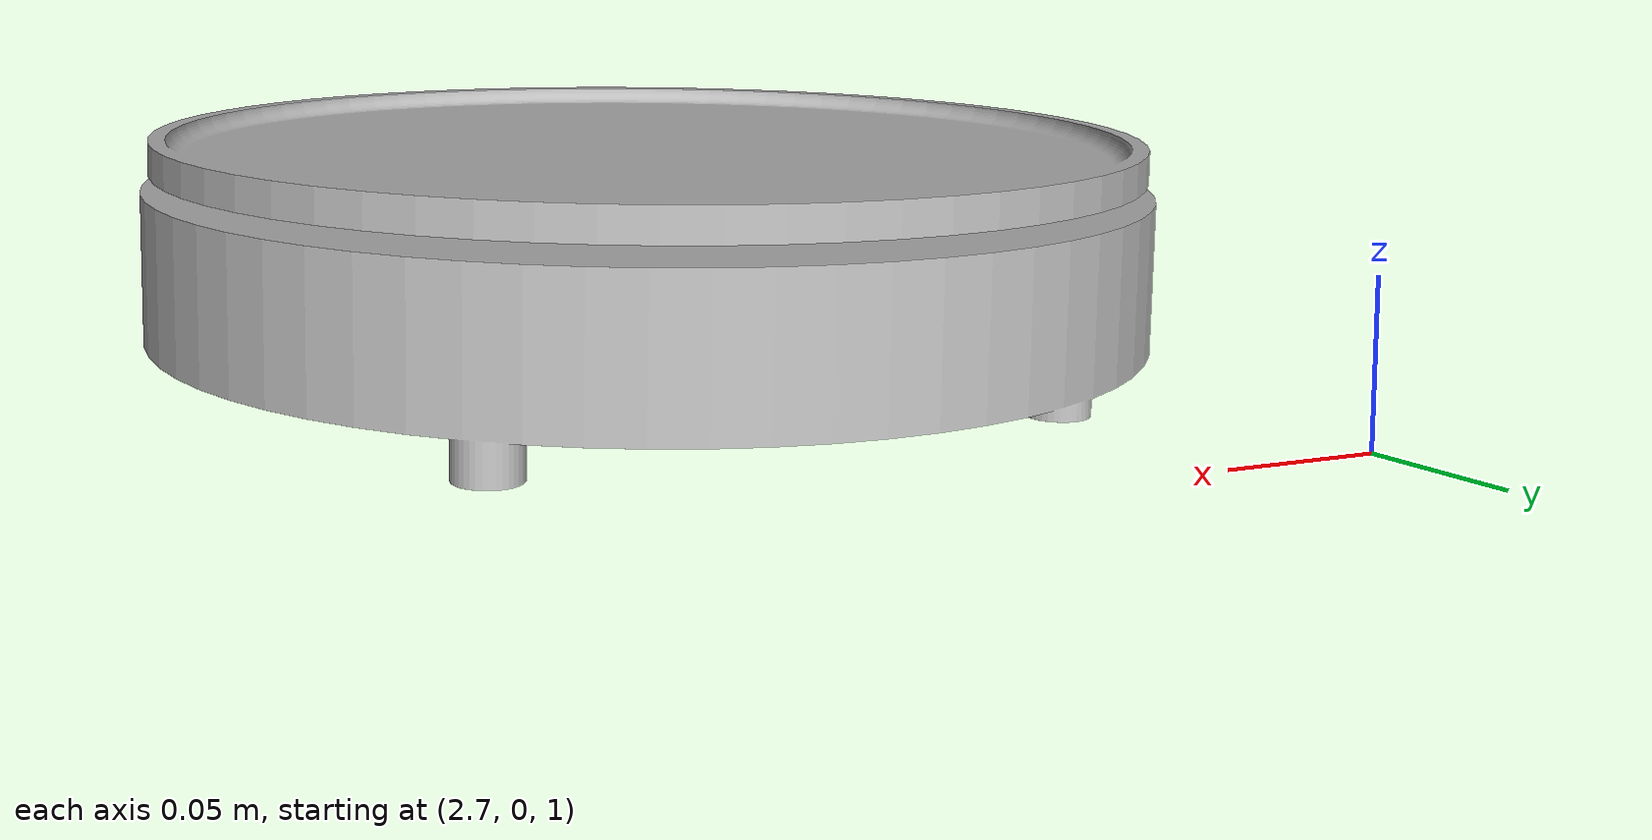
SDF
<sdf version="1.4">
    <model name="pancake_maker">
        <pose>3.000000 0.000000 1.000000 0.000000 -0.000000 0.000000</pose>
        <static>1</static>
        <link name="pancake_maker_link">
            <pose>0.000000 0.000000 0.000000 0.000000 -0.000000 0.000000</pose>

            <collision name="pancake_maker_collision">
                <pose>0.000000 0.000000 0.000000 0.000000 -0.000000 0.000000</pose>
                <geometry>
                    <mesh>
                        <uri>/home/furdek/catkin_ws/src/gazebo_pkg/models/pancake_maker/meshes/pancake_maker.stl</uri>
                        <scale>1 1 1</scale>
                    </mesh>
                </geometry>

            </collision>

            <visual name="pancake_maker_visual">
                <pose>0.000000 0.000000 0.000000 0.000000 -0.000000 0.000000</pose>
                <geometry>
                    <mesh>
                        <uri>/home/furdek/catkin_ws/src/gazebo_pkg/models/pancake_maker/meshes/pancake_maker.stl</uri>
                        <scale>1 1 1</scale>
                    </mesh>
                </geometry>
            </visual>
        </link>
    </model>
</sdf>
